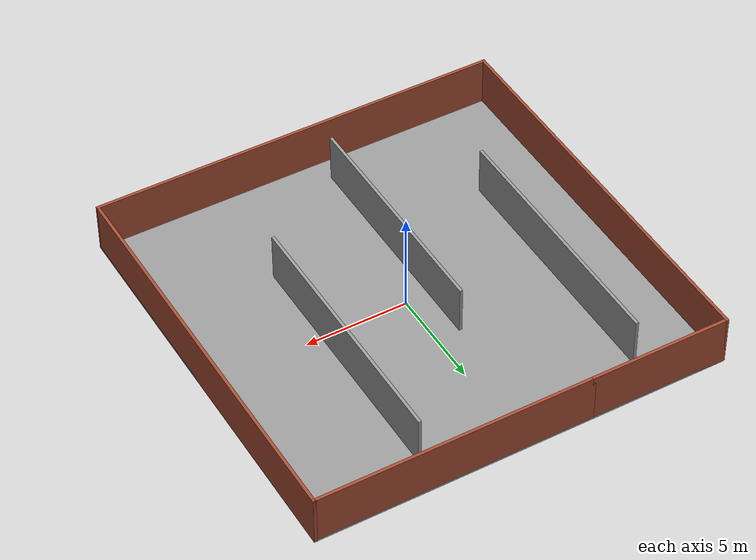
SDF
<?xml version='1.0'?>
<sdf version='1.7'>
  <model name='Maze'>
    <pose>-0.011567 -0.073215 0 0 -0 0</pose>
    <link name='Floor_0'>
      <collision name='Floor_0_Collision'>
        <geometry>
          <box>
            <size>20.25 20 0.1</size>
          </box>
        </geometry>
        <pose>0 0 0.05 0 -0 0</pose>
      </collision>
      <visual name='Floor_0_Visual'>
        <pose>0 0 0.05 0 -0 0</pose>
        <geometry>
          <box>
            <size>20.25 20 0.1</size>
          </box>
        </geometry>
        <material>
          <script>
            <uri>file://media/materials/scripts/gazebo.material</uri>
            <name>Gazebo/Grey</name>
          </script>
          <ambient>1 1 1 1</ambient>
        </material>
        <meta>
          <layer>0</layer>
        </meta>
      </visual>
      <pose>-0 0 0 0 -0 0</pose>
    </link>
    <link name='Wall_34'>
      <collision name='Wall_34_Collision'>
        <geometry>
          <box>
            <size>13.5 0.15 2.5</size>
          </box>
        </geometry>
        <pose>0 0 1.25 0 -0 0</pose>
      </collision>
      <visual name='Wall_34_Visual'>
        <pose>0 0 1.25 0 -0 0</pose>
        <geometry>
          <box>
            <size>13.5 0.15 2.5</size>
          </box>
        </geometry>
        <material>
          <script>
            <uri>file://media/materials/scripts/gazebo.material</uri>
            <name>Gazebo/Bricks</name>
          </script>
          <ambient>1 1 1 1</ambient>
        </material>
        <meta>
          <layer>0</layer>
        </meta>
      </visual>
      <pose>3.375 9.925 0 0 -0 0</pose>
    </link>
    <link name='Wall_35'>
      <collision name='Wall_35_Collision'>
        <geometry>
          <box>
            <size>20 0.15 2.5</size>
          </box>
        </geometry>
        <pose>0 0 1.25 0 -0 0</pose>
      </collision>
      <visual name='Wall_35_Visual'>
        <pose>0 0 1.25 0 -0 0</pose>
        <geometry>
          <box>
            <size>20 0.15 2.5</size>
          </box>
        </geometry>
        <material>
          <script>
            <uri>file://media/materials/scripts/gazebo.material</uri>
            <name>Gazebo/Bricks</name>
          </script>
          <ambient>1 1 1 1</ambient>
        </material>
        <meta>
          <layer>0</layer>
        </meta>
      </visual>
      <pose>10.05 0 0 0 -0 -1.5708</pose>
    </link>
    <link name='Wall_36'>
      <collision name='Wall_36_Collision'>
        <geometry>
          <box>
            <size>20.25 0.15 2.5</size>
          </box>
        </geometry>
        <pose>0 0 1.25 0 -0 0</pose>
      </collision>
      <visual name='Wall_36_Visual'>
        <pose>0 0 1.25 0 -0 0</pose>
        <geometry>
          <box>
            <size>20.25 0.15 2.5</size>
          </box>
        </geometry>
        <material>
          <script>
            <uri>file://media/materials/scripts/gazebo.material</uri>
            <name>Gazebo/Bricks</name>
          </script>
          <ambient>1 1 1 1</ambient>
        </material>
        <meta>
          <layer>0</layer>
        </meta>
      </visual>
      <pose>-0 -9.925 0 0 -0 3.14159</pose>
    </link>
    <link name='Wall_37'>
      <collision name='Wall_37_Collision'>
        <geometry>
          <box>
            <size>20 0.15 2.5</size>
          </box>
        </geometry>
        <pose>0 0 1.25 0 -0 0</pose>
      </collision>
      <visual name='Wall_37_Visual'>
        <pose>0 0 1.25 0 -0 0</pose>
        <geometry>
          <box>
            <size>20 0.15 2.5</size>
          </box>
        </geometry>
        <material>
          <script>
            <uri>file://media/materials/scripts/gazebo.material</uri>
            <name>Gazebo/Bricks</name>
          </script>
          <ambient>1 1 1 1</ambient>
        </material>
        <meta>
          <layer>0</layer>
        </meta>
      </visual>
      <pose>-10.05 0 0 0 -0 1.5708</pose>
    </link>
    <link name='Wall_38'>
      <collision name='Wall_38_Collision'>
        <geometry>
          <box>
            <size>6.9 0.15 2.5</size>
          </box>
        </geometry>
        <pose>0 0 1.25 0 -0 0</pose>
      </collision>
      <visual name='Wall_38_Visual'>
        <pose>0 0 1.25 0 -0 0</pose>
        <geometry>
          <box>
            <size>6.9 0.15 2.5</size>
          </box>
        </geometry>
        <material>
          <script>
            <uri>file://media/materials/scripts/gazebo.material</uri>
            <name>Gazebo/Bricks</name>
          </script>
          <ambient>1 1 1 1</ambient>
        </material>
        <meta>
          <layer>0</layer>
        </meta>
      </visual>
      <pose>-6.675 9.925 0 0 -0 0</pose>
    </link>
    <link name='Wall_66'>
      <collision name='Wall_66_Collision'>
        <geometry>
          <box>
            <size>12.75 0.15 2.5</size>
          </box>
        </geometry>
        <pose>0 0 1.25 0 -0 0</pose>
      </collision>
      <visual name='Wall_66_Visual'>
        <pose>0 0 1.25 0 -0 0</pose>
        <geometry>
          <box>
            <size>12.75 0.15 2.5</size>
          </box>
        </geometry>
        <material>
          <script>
            <uri>file://media/materials/scripts/gazebo.material</uri>
            <name>Gazebo/Grey</name>
          </script>
          <ambient>1 1 1 1</ambient>
        </material>
        <meta>
          <layer>0</layer>
        </meta>
      </visual>
      <pose>-6.63929 1.81909 0 0 -0 -1.5708</pose>
    </link>
    <link name='Wall_68'>
      <collision name='Wall_68_Collision'>
        <geometry>
          <box>
            <size>11.5 0.15 2.5</size>
          </box>
        </geometry>
        <pose>0 0 1.25 0 -0 0</pose>
      </collision>
      <visual name='Wall_68_Visual'>
        <pose>0 0 1.25 0 -0 0</pose>
        <geometry>
          <box>
            <size>11.5 0.15 2.5</size>
          </box>
        </geometry>
        <material>
          <script>
            <uri>file://media/materials/scripts/gazebo.material</uri>
            <name>Gazebo/Grey</name>
          </script>
          <ambient>1 1 1 1</ambient>
        </material>
        <meta>
          <layer>0</layer>
        </meta>
      </visual>
      <pose>-1.17933 -3.00925 0 0 -0 -1.5708</pose>
    </link>
    <link name='Wall_70'>
      <collision name='Wall_70_Collision'>
        <geometry>
          <box>
            <size>12.75 0.15 2.5</size>
          </box>
        </geometry>
        <pose>0 0 1.25 0 -0 0</pose>
      </collision>
      <visual name='Wall_70_Visual'>
        <pose>0 0 1.25 0 -0 0</pose>
        <geometry>
          <box>
            <size>12.75 0.15 2.5</size>
          </box>
        </geometry>
        <material>
          <script>
            <uri>file://media/materials/scripts/gazebo.material</uri>
            <name>Gazebo/Grey</name>
          </script>
          <ambient>1 1 1 1</ambient>
        </material>
        <meta>
          <layer>0</layer>
        </meta>
      </visual>
      <pose>4.23186 2.04749 0 0 -0 -1.5708</pose>
    </link>
    <static>1</static>
  </model>
</sdf>
